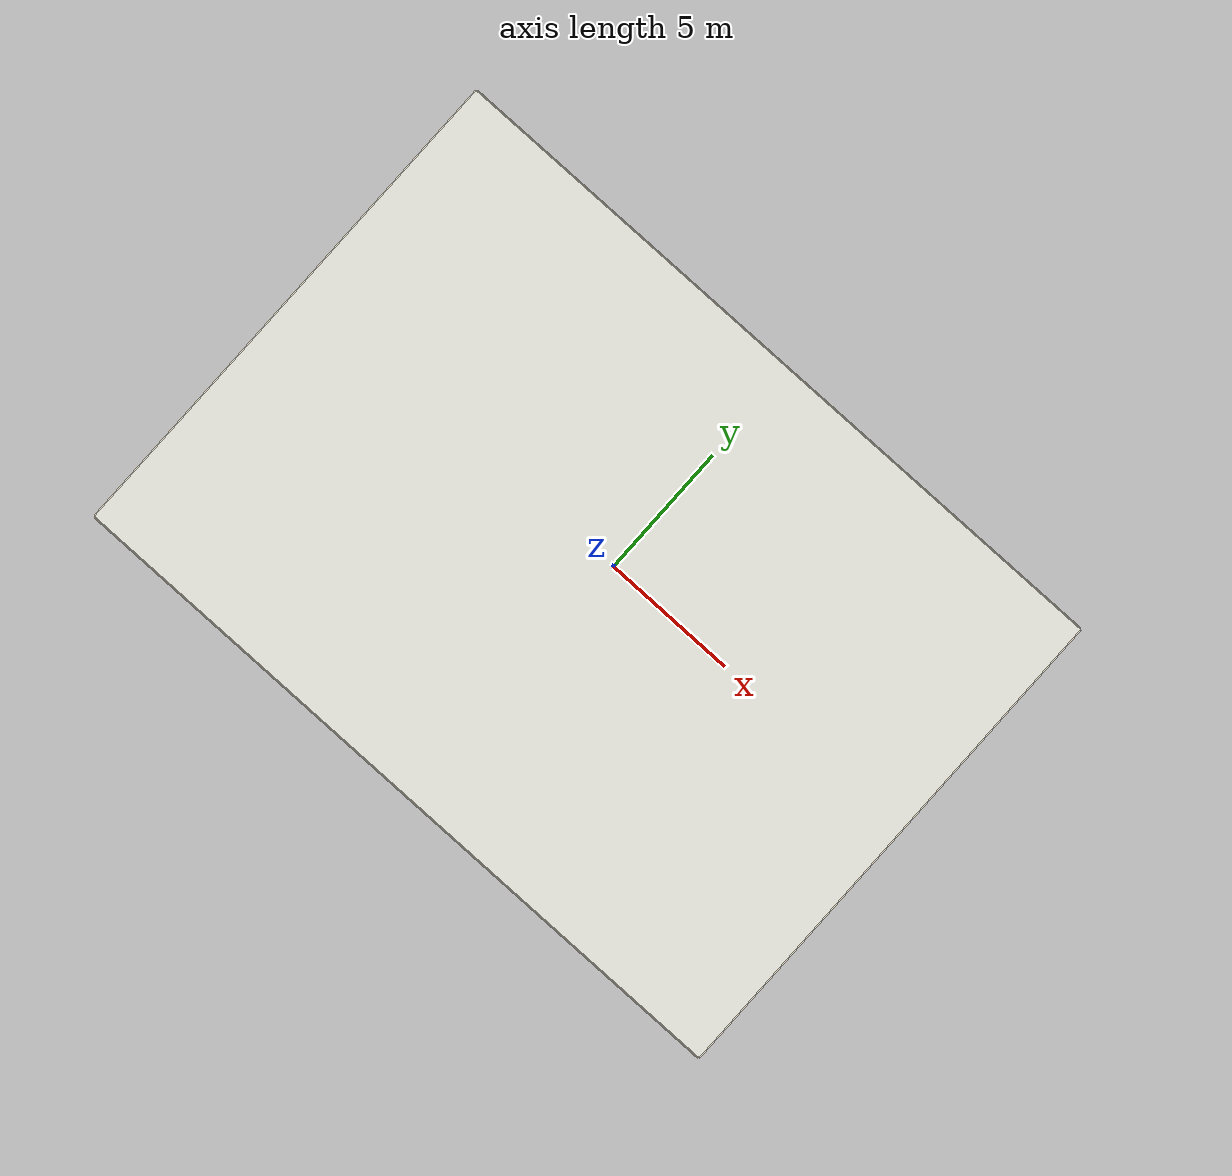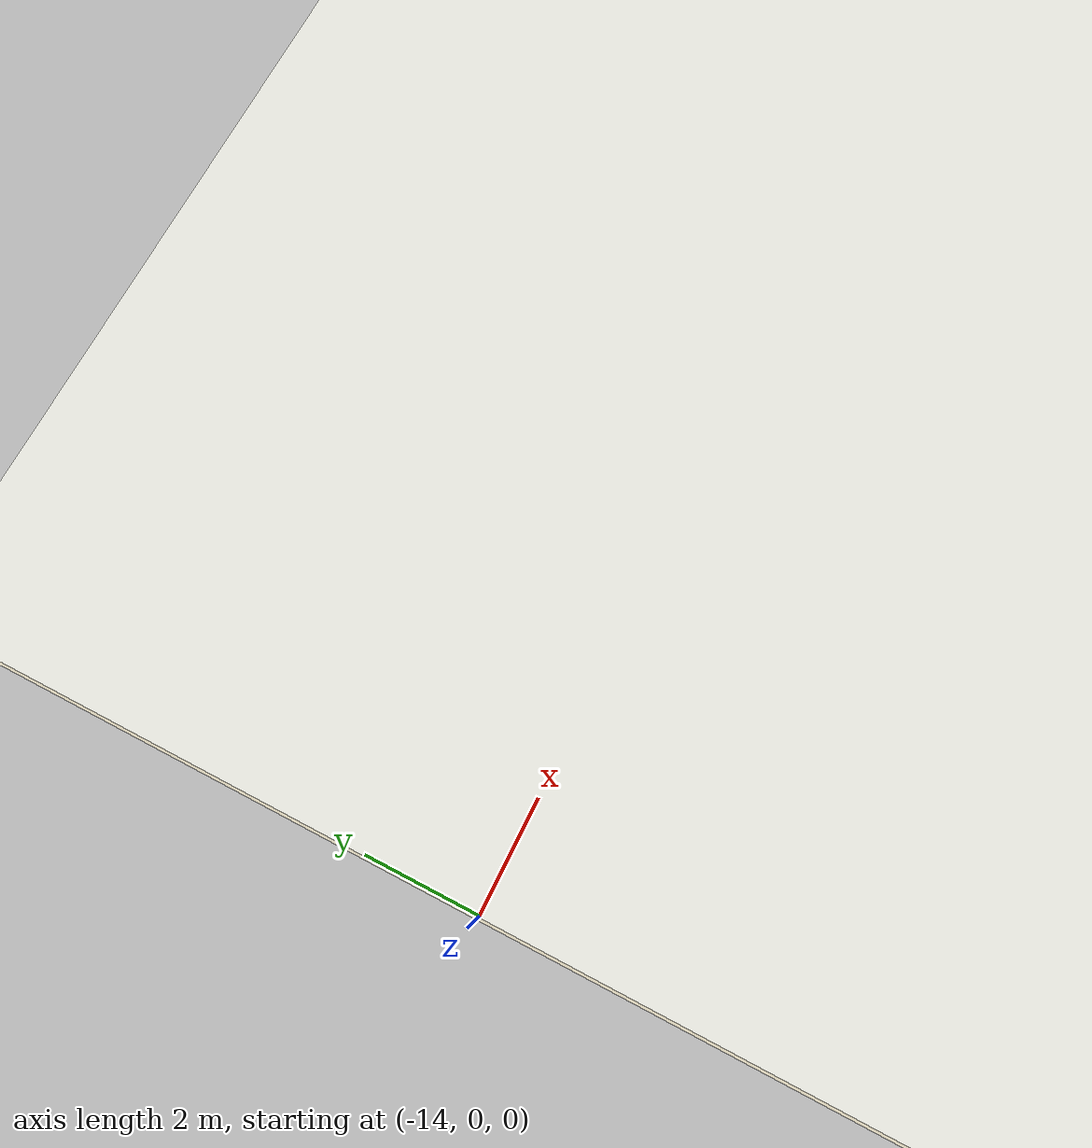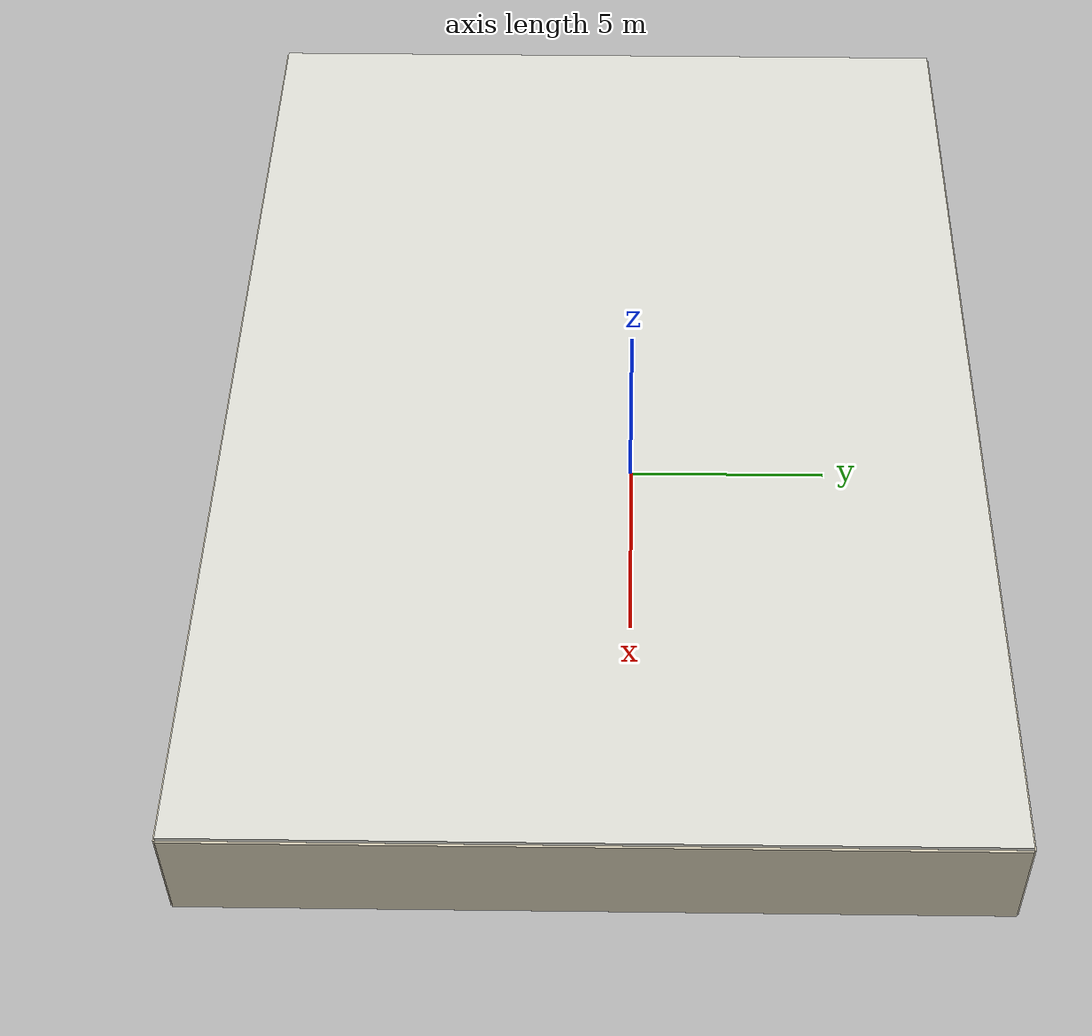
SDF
<?xml version="1.0" ?>
<sdf version='1.7'>
  <world name='default'>
    <plugin name='gazebo_ros_state' filename='libgazebo_ros_state.so'>
      <ros>
        <namespace>/</namespace>
      </ros>
      <update_rate>1000.0</update_rate>
    </plugin>

    <light name='sun' type='directional'>
      <cast_shadows>1</cast_shadows>
      <pose>0 0 10 0 -0 0</pose>
      <diffuse>0.15 0.15 0.14 1</diffuse>
      <specular>0.2 0.2 0.2 1</specular>
      <attenuation>
        <range>1000</range>
        <constant>0.9</constant>
        <linear>0.01</linear>
        <quadratic>0.001</quadratic>
      </attenuation>
      <direction>0.05 0.02 -1.0</direction>
      <spot>
        <inner_angle>0</inner_angle>
        <outer_angle>0</outer_angle>
        <falloff>0</falloff>
      </spot>
    </light>
    <model name='ground_plane'>
      <static>1</static>
      <link name='link'>
        <collision name='collision'>
          <geometry>
            <plane>
              <normal>0 0 1</normal>
              <size>100 100</size>
            </plane>
          </geometry>
          <surface>
            <friction>
              <ode>
                <mu>100</mu>
                <mu2>50</mu2>
              </ode>
              <torsional>
                <ode/>
              </torsional>
            </friction>
            <contact>
              <ode/>
            </contact>
            <bounce/>
          </surface>
          <max_contacts>10</max_contacts>
        </collision>
        <self_collide>0</self_collide>
        <enable_wind>0</enable_wind>
        <kinematic>0</kinematic>
      </link>
    </model>
    <gravity>0 0 -9.8</gravity>
    <magnetic_field>6e-06 2.3e-05 -4.2e-05</magnetic_field>
    <atmosphere type='adiabatic'/>
    <physics type='ode'>
      <max_step_size>0.001</max_step_size>
      <real_time_factor>1</real_time_factor>
      <real_time_update_rate>1000</real_time_update_rate>
    </physics>
    <scene>
      <ambient>0.69 0.69 0.67 1</ambient>
      <background>0.80 0.77 0.68 1</background>
      <shadows>1</shadows>
    </scene>
    <audio>
      <device>default</device>
    </audio>
    <wind/>
    <spherical_coordinates>
      <surface_model>EARTH_WGS84</surface_model>
      <latitude_deg>0</latitude_deg>
      <longitude_deg>0</longitude_deg>
      <elevation>0</elevation>
      <heading_deg>0</heading_deg>
    </spherical_coordinates>
    <model name='lab_09'>
    <static>1</static>
    <pose>0 0 0.001 0 0 0</pose>
    <link name='floor'>
      <visual name='floor_visual'>
        <cast_shadows>0</cast_shadows>
        <geometry><mesh><uri>model://lab_09/meshes/floor.obj</uri></mesh></geometry>
      </visual>
    </link>
    <link name='ducts'>
      <visual name='ducts_visual'>
        <geometry><mesh><uri>model://lab_09/meshes/ducts.obj</uri></mesh></geometry>
      </visual>
      <collision name='ducts_collision'>
        <geometry><mesh><uri>model://lab_09/meshes/ducts.obj</uri></mesh></geometry>
      </collision>
    </link>
    <link name='wall_0'>
      <pose>-0.490 8.585 1.350 0 0 0.000</pose>
      <visual name='wall_0_visual'>
        <cast_shadows>0</cast_shadows>
        <geometry><box><size>26.477 0.100 2.700</size></box></geometry>
        <material><ambient>0.80 0.77 0.68 1</ambient><diffuse>0.80 0.77 0.68 1</diffuse></material>
      </visual>
    </link>
    <link name='wall_1'>
      <pose>-0.490 -10.129 1.350 0 0 0.000</pose>
      <visual name='wall_1_visual'>
        <cast_shadows>0</cast_shadows>
        <geometry><box><size>26.477 0.100 2.700</size></box></geometry>
        <material><ambient>0.80 0.77 0.68 1</ambient><diffuse>0.80 0.77 0.68 1</diffuse></material>
      </visual>
    </link>
    <link name='wall_2'>
      <pose>-13.728 -0.772 1.350 0 0 0.000</pose>
      <visual name='wall_2_visual'>
        <cast_shadows>0</cast_shadows>
        <geometry><box><size>0.100 18.715 2.700</size></box></geometry>
        <material><ambient>0.80 0.77 0.68 1</ambient><diffuse>0.80 0.77 0.68 1</diffuse></material>
      </visual>
    </link>
    <link name='wall_3'>
      <pose>12.749 -0.772 1.350 0 0 0.000</pose>
      <visual name='wall_3_visual'>
        <cast_shadows>0</cast_shadows>
        <geometry><box><size>0.100 18.715 2.700</size></box></geometry>
        <material><ambient>0.80 0.77 0.68 1</ambient><diffuse>0.80 0.77 0.68 1</diffuse></material>
      </visual>
    </link>
    <link name='ceiling'>
      <pose>-0.490 -0.772 2.750 0 0 0.000</pose>
      <visual name='ceiling_visual'>
        <cast_shadows>0</cast_shadows>
        <geometry><box><size>26.477 18.715 0.100</size></box></geometry>
        <material><ambient>0.85 0.85 0.82 1</ambient><diffuse>0.85 0.85 0.82 1</diffuse></material>
      </visual>
    </link>
    <link name='panel_0_0'>
      <pose>-12.228 -8.629 2.690 0 0 0.000</pose>
      <visual name='panel_0_0_visual'>
        <cast_shadows>0</cast_shadows>
        <geometry><box><size>1.200 0.600 0.020</size></box></geometry>
        <material><ambient>1.00 1.00 1.00 1</ambient><diffuse>1.00 1.00 1.00 1</diffuse><emissive>1.00 1.00 1.00 1</emissive></material>
      </visual>
    </link>
    <link name='panel_0_1'>
      <pose>-12.228 -6.229 2.690 0 0 0.000</pose>
      <visual name='panel_0_1_visual'>
        <cast_shadows>0</cast_shadows>
        <geometry><box><size>1.200 0.600 0.020</size></box></geometry>
        <material><ambient>1.00 1.00 1.00 1</ambient><diffuse>1.00 1.00 1.00 1</diffuse><emissive>1.00 1.00 1.00 1</emissive></material>
      </visual>
    </link>
    <link name='panel_0_2'>
      <pose>-12.228 -3.829 2.690 0 0 0.000</pose>
      <visual name='panel_0_2_visual'>
        <cast_shadows>0</cast_shadows>
        <geometry><box><size>1.200 0.600 0.020</size></box></geometry>
        <material><ambient>1.00 1.00 1.00 1</ambient><diffuse>1.00 1.00 1.00 1</diffuse><emissive>1.00 1.00 1.00 1</emissive></material>
      </visual>
    </link>
    <link name='panel_0_3'>
      <pose>-12.228 -1.429 2.690 0 0 0.000</pose>
      <visual name='panel_0_3_visual'>
        <cast_shadows>0</cast_shadows>
        <geometry><box><size>1.200 0.600 0.020</size></box></geometry>
        <material><ambient>1.00 1.00 1.00 1</ambient><diffuse>1.00 1.00 1.00 1</diffuse><emissive>1.00 1.00 1.00 1</emissive></material>
      </visual>
    </link>
    <link name='panel_0_4'>
      <pose>-12.228 0.971 2.690 0 0 0.000</pose>
      <visual name='panel_0_4_visual'>
        <cast_shadows>0</cast_shadows>
        <geometry><box><size>1.200 0.600 0.020</size></box></geometry>
        <material><ambient>1.00 1.00 1.00 1</ambient><diffuse>1.00 1.00 1.00 1</diffuse><emissive>1.00 1.00 1.00 1</emissive></material>
      </visual>
    </link>
    <link name='panel_0_5'>
      <pose>-12.228 3.371 2.690 0 0 0.000</pose>
      <visual name='panel_0_5_visual'>
        <cast_shadows>0</cast_shadows>
        <geometry><box><size>1.200 0.600 0.020</size></box></geometry>
        <material><ambient>1.00 1.00 1.00 1</ambient><diffuse>1.00 1.00 1.00 1</diffuse><emissive>1.00 1.00 1.00 1</emissive></material>
      </visual>
    </link>
    <link name='panel_0_6'>
      <pose>-12.228 5.771 2.690 0 0 0.000</pose>
      <visual name='panel_0_6_visual'>
        <cast_shadows>0</cast_shadows>
        <geometry><box><size>1.200 0.600 0.020</size></box></geometry>
        <material><ambient>1.00 1.00 1.00 1</ambient><diffuse>1.00 1.00 1.00 1</diffuse><emissive>1.00 1.00 1.00 1</emissive></material>
      </visual>
    </link>
    <link name='panel_1_0'>
      <pose>-9.828 -8.629 2.690 0 0 0.000</pose>
      <visual name='panel_1_0_visual'>
        <cast_shadows>0</cast_shadows>
        <geometry><box><size>1.200 0.600 0.020</size></box></geometry>
        <material><ambient>1.00 1.00 1.00 1</ambient><diffuse>1.00 1.00 1.00 1</diffuse><emissive>1.00 1.00 1.00 1</emissive></material>
      </visual>
    </link>
    <link name='panel_1_1'>
      <pose>-9.828 -6.229 2.690 0 0 0.000</pose>
      <visual name='panel_1_1_visual'>
        <cast_shadows>0</cast_shadows>
        <geometry><box><size>1.200 0.600 0.020</size></box></geometry>
        <material><ambient>1.00 1.00 1.00 1</ambient><diffuse>1.00 1.00 1.00 1</diffuse><emissive>1.00 1.00 1.00 1</emissive></material>
      </visual>
    </link>
    <link name='panel_1_2'>
      <pose>-9.828 -3.829 2.690 0 0 0.000</pose>
      <visual name='panel_1_2_visual'>
        <cast_shadows>0</cast_shadows>
        <geometry><box><size>1.200 0.600 0.020</size></box></geometry>
        <material><ambient>1.00 1.00 1.00 1</ambient><diffuse>1.00 1.00 1.00 1</diffuse><emissive>1.00 1.00 1.00 1</emissive></material>
      </visual>
    </link>
    <link name='panel_1_3'>
      <pose>-9.828 -1.429 2.690 0 0 0.000</pose>
      <visual name='panel_1_3_visual'>
        <cast_shadows>0</cast_shadows>
        <geometry><box><size>1.200 0.600 0.020</size></box></geometry>
        <material><ambient>1.00 1.00 1.00 1</ambient><diffuse>1.00 1.00 1.00 1</diffuse><emissive>1.00 1.00 1.00 1</emissive></material>
      </visual>
    </link>
    <link name='panel_1_4'>
      <pose>-9.828 0.971 2.690 0 0 0.000</pose>
      <visual name='panel_1_4_visual'>
        <cast_shadows>0</cast_shadows>
        <geometry><box><size>1.200 0.600 0.020</size></box></geometry>
        <material><ambient>1.00 1.00 1.00 1</ambient><diffuse>1.00 1.00 1.00 1</diffuse><emissive>1.00 1.00 1.00 1</emissive></material>
      </visual>
    </link>
    <link name='panel_1_5'>
      <pose>-9.828 3.371 2.690 0 0 0.000</pose>
      <visual name='panel_1_5_visual'>
        <cast_shadows>0</cast_shadows>
        <geometry><box><size>1.200 0.600 0.020</size></box></geometry>
        <material><ambient>1.00 1.00 1.00 1</ambient><diffuse>1.00 1.00 1.00 1</diffuse><emissive>1.00 1.00 1.00 1</emissive></material>
      </visual>
    </link>
    <link name='panel_1_6'>
      <pose>-9.828 5.771 2.690 0 0 0.000</pose>
      <visual name='panel_1_6_visual'>
        <cast_shadows>0</cast_shadows>
        <geometry><box><size>1.200 0.600 0.020</size></box></geometry>
        <material><ambient>1.00 1.00 1.00 1</ambient><diffuse>1.00 1.00 1.00 1</diffuse><emissive>1.00 1.00 1.00 1</emissive></material>
      </visual>
    </link>
    <link name='panel_2_0'>
      <pose>-7.428 -8.629 2.690 0 0 0.000</pose>
      <visual name='panel_2_0_visual'>
        <cast_shadows>0</cast_shadows>
        <geometry><box><size>1.200 0.600 0.020</size></box></geometry>
        <material><ambient>1.00 1.00 1.00 1</ambient><diffuse>1.00 1.00 1.00 1</diffuse><emissive>1.00 1.00 1.00 1</emissive></material>
      </visual>
    </link>
    <link name='panel_2_1'>
      <pose>-7.428 -6.229 2.690 0 0 0.000</pose>
      <visual name='panel_2_1_visual'>
        <cast_shadows>0</cast_shadows>
        <geometry><box><size>1.200 0.600 0.020</size></box></geometry>
        <material><ambient>1.00 1.00 1.00 1</ambient><diffuse>1.00 1.00 1.00 1</diffuse><emissive>1.00 1.00 1.00 1</emissive></material>
      </visual>
    </link>
    <link name='panel_2_2'>
      <pose>-7.428 -3.829 2.690 0 0 0.000</pose>
      <visual name='panel_2_2_visual'>
        <cast_shadows>0</cast_shadows>
        <geometry><box><size>1.200 0.600 0.020</size></box></geometry>
        <material><ambient>1.00 1.00 1.00 1</ambient><diffuse>1.00 1.00 1.00 1</diffuse><emissive>1.00 1.00 1.00 1</emissive></material>
      </visual>
    </link>
    <link name='panel_2_3'>
      <pose>-7.428 -1.429 2.690 0 0 0.000</pose>
      <visual name='panel_2_3_visual'>
        <cast_shadows>0</cast_shadows>
        <geometry><box><size>1.200 0.600 0.020</size></box></geometry>
        <material><ambient>1.00 1.00 1.00 1</ambient><diffuse>1.00 1.00 1.00 1</diffuse><emissive>1.00 1.00 1.00 1</emissive></material>
      </visual>
    </link>
    <link name='panel_2_4'>
      <pose>-7.428 0.971 2.690 0 0 0.000</pose>
      <visual name='panel_2_4_visual'>
        <cast_shadows>0</cast_shadows>
        <geometry><box><size>1.200 0.600 0.020</size></box></geometry>
        <material><ambient>1.00 1.00 1.00 1</ambient><diffuse>1.00 1.00 1.00 1</diffuse><emissive>1.00 1.00 1.00 1</emissive></material>
      </visual>
    </link>
    <link name='panel_2_5'>
      <pose>-7.428 3.371 2.690 0 0 0.000</pose>
      <visual name='panel_2_5_visual'>
        <cast_shadows>0</cast_shadows>
        <geometry><box><size>1.200 0.600 0.020</size></box></geometry>
        <material><ambient>1.00 1.00 1.00 1</ambient><diffuse>1.00 1.00 1.00 1</diffuse><emissive>1.00 1.00 1.00 1</emissive></material>
      </visual>
    </link>
    <link name='panel_2_6'>
      <pose>-7.428 5.771 2.690 0 0 0.000</pose>
      <visual name='panel_2_6_visual'>
        <cast_shadows>0</cast_shadows>
        <geometry><box><size>1.200 0.600 0.020</size></box></geometry>
        <material><ambient>1.00 1.00 1.00 1</ambient><diffuse>1.00 1.00 1.00 1</diffuse><emissive>1.00 1.00 1.00 1</emissive></material>
      </visual>
    </link>
    <link name='panel_3_0'>
      <pose>-5.028 -8.629 2.690 0 0 0.000</pose>
      <visual name='panel_3_0_visual'>
        <cast_shadows>0</cast_shadows>
        <geometry><box><size>1.200 0.600 0.020</size></box></geometry>
        <material><ambient>1.00 1.00 1.00 1</ambient><diffuse>1.00 1.00 1.00 1</diffuse><emissive>1.00 1.00 1.00 1</emissive></material>
      </visual>
    </link>
    <link name='panel_3_1'>
      <pose>-5.028 -6.229 2.690 0 0 0.000</pose>
      <visual name='panel_3_1_visual'>
        <cast_shadows>0</cast_shadows>
        <geometry><box><size>1.200 0.600 0.020</size></box></geometry>
        <material><ambient>1.00 1.00 1.00 1</ambient><diffuse>1.00 1.00 1.00 1</diffuse><emissive>1.00 1.00 1.00 1</emissive></material>
      </visual>
    </link>
    <link name='panel_3_2'>
      <pose>-5.028 -3.829 2.690 0 0 0.000</pose>
      <visual name='panel_3_2_visual'>
        <cast_shadows>0</cast_shadows>
        <geometry><box><size>1.200 0.600 0.020</size></box></geometry>
        <material><ambient>1.00 1.00 1.00 1</ambient><diffuse>1.00 1.00 1.00 1</diffuse><emissive>1.00 1.00 1.00 1</emissive></material>
      </visual>
    </link>
    <link name='panel_3_3'>
      <pose>-5.028 -1.429 2.690 0 0 0.000</pose>
      <visual name='panel_3_3_visual'>
        <cast_shadows>0</cast_shadows>
        <geometry><box><size>1.200 0.600 0.020</size></box></geometry>
        <material><ambient>1.00 1.00 1.00 1</ambient><diffuse>1.00 1.00 1.00 1</diffuse><emissive>1.00 1.00 1.00 1</emissive></material>
      </visual>
    </link>
    <link name='panel_3_4'>
      <pose>-5.028 0.971 2.690 0 0 0.000</pose>
      <visual name='panel_3_4_visual'>
        <cast_shadows>0</cast_shadows>
        <geometry><box><size>1.200 0.600 0.020</size></box></geometry>
        <material><ambient>1.00 1.00 1.00 1</ambient><diffuse>1.00 1.00 1.00 1</diffuse><emissive>1.00 1.00 1.00 1</emissive></material>
      </visual>
    </link>
    <link name='panel_3_5'>
      <pose>-5.028 3.371 2.690 0 0 0.000</pose>
      <visual name='panel_3_5_visual'>
        <cast_shadows>0</cast_shadows>
        <geometry><box><size>1.200 0.600 0.020</size></box></geometry>
        <material><ambient>1.00 1.00 1.00 1</ambient><diffuse>1.00 1.00 1.00 1</diffuse><emissive>1.00 1.00 1.00 1</emissive></material>
      </visual>
    </link>
    <link name='panel_3_6'>
      <pose>-5.028 5.771 2.690 0 0 0.000</pose>
      <visual name='panel_3_6_visual'>
        <cast_shadows>0</cast_shadows>
        <geometry><box><size>1.200 0.600 0.020</size></box></geometry>
        <material><ambient>1.00 1.00 1.00 1</ambient><diffuse>1.00 1.00 1.00 1</diffuse><emissive>1.00 1.00 1.00 1</emissive></material>
      </visual>
    </link>
    <link name='panel_4_0'>
      <pose>-2.628 -8.629 2.690 0 0 0.000</pose>
      <visual name='panel_4_0_visual'>
        <cast_shadows>0</cast_shadows>
        <geometry><box><size>1.200 0.600 0.020</size></box></geometry>
        <material><ambient>1.00 1.00 1.00 1</ambient><diffuse>1.00 1.00 1.00 1</diffuse><emissive>1.00 1.00 1.00 1</emissive></material>
      </visual>
    </link>
    <link name='panel_4_1'>
      <pose>-2.628 -6.229 2.690 0 0 0.000</pose>
      <visual name='panel_4_1_visual'>
        <cast_shadows>0</cast_shadows>
        <geometry><box><size>1.200 0.600 0.020</size></box></geometry>
        <material><ambient>1.00 1.00 1.00 1</ambient><diffuse>1.00 1.00 1.00 1</diffuse><emissive>1.00 1.00 1.00 1</emissive></material>
      </visual>
    </link>
    <link name='panel_4_2'>
      <pose>-2.628 -3.829 2.690 0 0 0.000</pose>
      <visual name='panel_4_2_visual'>
        <cast_shadows>0</cast_shadows>
        <geometry><box><size>1.200 0.600 0.020</size></box></geometry>
        <material><ambient>1.00 1.00 1.00 1</ambient><diffuse>1.00 1.00 1.00 1</diffuse><emissive>1.00 1.00 1.00 1</emissive></material>
      </visual>
    </link>
    <link name='panel_4_3'>
      <pose>-2.628 -1.429 2.690 0 0 0.000</pose>
      <visual name='panel_4_3_visual'>
        <cast_shadows>0</cast_shadows>
        <geometry><box><size>1.200 0.600 0.020</size></box></geometry>
        <material><ambient>1.00 1.00 1.00 1</ambient><diffuse>1.00 1.00 1.00 1</diffuse><emissive>1.00 1.00 1.00 1</emissive></material>
      </visual>
    </link>
    <link name='panel_4_4'>
      <pose>-2.628 0.971 2.690 0 0 0.000</pose>
      <visual name='panel_4_4_visual'>
        <cast_shadows>0</cast_shadows>
        <geometry><box><size>1.200 0.600 0.020</size></box></geometry>
        <material><ambient>1.00 1.00 1.00 1</ambient><diffuse>1.00 1.00 1.00 1</diffuse><emissive>1.00 1.00 1.00 1</emissive></material>
      </visual>
    </link>
    <link name='panel_4_5'>
      <pose>-2.628 3.371 2.690 0 0 0.000</pose>
      <visual name='panel_4_5_visual'>
        <cast_shadows>0</cast_shadows>
        <geometry><box><size>1.200 0.600 0.020</size></box></geometry>
        <material><ambient>1.00 1.00 1.00 1</ambient><diffuse>1.00 1.00 1.00 1</diffuse><emissive>1.00 1.00 1.00 1</emissive></material>
      </visual>
    </link>
    <link name='panel_4_6'>
      <pose>-2.628 5.771 2.690 0 0 0.000</pose>
      <visual name='panel_4_6_visual'>
        <cast_shadows>0</cast_shadows>
        <geometry><box><size>1.200 0.600 0.020</size></box></geometry>
        <material><ambient>1.00 1.00 1.00 1</ambient><diffuse>1.00 1.00 1.00 1</diffuse><emissive>1.00 1.00 1.00 1</emissive></material>
      </visual>
    </link>
    <link name='panel_5_0'>
      <pose>-0.228 -8.629 2.690 0 0 0.000</pose>
      <visual name='panel_5_0_visual'>
        <cast_shadows>0</cast_shadows>
        <geometry><box><size>1.200 0.600 0.020</size></box></geometry>
        <material><ambient>1.00 1.00 1.00 1</ambient><diffuse>1.00 1.00 1.00 1</diffuse><emissive>1.00 1.00 1.00 1</emissive></material>
      </visual>
    </link>
    <link name='panel_5_1'>
      <pose>-0.228 -6.229 2.690 0 0 0.000</pose>
      <visual name='panel_5_1_visual'>
        <cast_shadows>0</cast_shadows>
        <geometry><box><size>1.200 0.600 0.020</size></box></geometry>
        <material><ambient>1.00 1.00 1.00 1</ambient><diffuse>1.00 1.00 1.00 1</diffuse><emissive>1.00 1.00 1.00 1</emissive></material>
      </visual>
    </link>
    <link name='panel_5_2'>
      <pose>-0.228 -3.829 2.690 0 0 0.000</pose>
      <visual name='panel_5_2_visual'>
        <cast_shadows>0</cast_shadows>
        <geometry><box><size>1.200 0.600 0.020</size></box></geometry>
        <material><ambient>1.00 1.00 1.00 1</ambient><diffuse>1.00 1.00 1.00 1</diffuse><emissive>1.00 1.00 1.00 1</emissive></material>
      </visual>
    </link>
    <link name='panel_5_3'>
      <pose>-0.228 -1.429 2.690 0 0 0.000</pose>
      <visual name='panel_5_3_visual'>
        <cast_shadows>0</cast_shadows>
        <geometry><box><size>1.200 0.600 0.020</size></box></geometry>
        <material><ambient>1.00 1.00 1.00 1</ambient><diffuse>1.00 1.00 1.00 1</diffuse><emissive>1.00 1.00 1.00 1</emissive></material>
      </visual>
    </link>
    <link name='panel_5_4'>
      <pose>-0.228 0.971 2.690 0 0 0.000</pose>
      <visual name='panel_5_4_visual'>
        <cast_shadows>0</cast_shadows>
        <geometry><box><size>1.200 0.600 0.020</size></box></geometry>
        <material><ambient>1.00 1.00 1.00 1</ambient><diffuse>1.00 1.00 1.00 1</diffuse><emissive>1.00 1.00 1.00 1</emissive></material>
      </visual>
    </link>
    <link name='panel_5_5'>
      <pose>-0.228 3.371 2.690 0 0 0.000</pose>
      <visual name='panel_5_5_visual'>
        <cast_shadows>0</cast_shadows>
        <geometry><box><size>1.200 0.600 0.020</size></box></geometry>
        <material><ambient>1.00 1.00 1.00 1</ambient><diffuse>1.00 1.00 1.00 1</diffuse><emissive>1.00 1.00 1.00 1</emissive></material>
      </visual>
    </link>
    <link name='panel_5_6'>
      <pose>-0.228 5.771 2.690 0 0 0.000</pose>
      <visual name='panel_5_6_visual'>
        <cast_shadows>0</cast_shadows>
        <geometry><box><size>1.200 0.600 0.020</size></box></geometry>
        <material><ambient>1.00 1.00 1.00 1</ambient><diffuse>1.00 1.00 1.00 1</diffuse><emissive>1.00 1.00 1.00 1</emissive></material>
      </visual>
    </link>
    <link name='panel_6_0'>
      <pose>2.172 -8.629 2.690 0 0 0.000</pose>
      <visual name='panel_6_0_visual'>
        <cast_shadows>0</cast_shadows>
        <geometry><box><size>1.200 0.600 0.020</size></box></geometry>
        <material><ambient>1.00 1.00 1.00 1</ambient><diffuse>1.00 1.00 1.00 1</diffuse><emissive>1.00 1.00 1.00 1</emissive></material>
      </visual>
    </link>
    <link name='panel_6_1'>
      <pose>2.172 -6.229 2.690 0 0 0.000</pose>
      <visual name='panel_6_1_visual'>
        <cast_shadows>0</cast_shadows>
        <geometry><box><size>1.200 0.600 0.020</size></box></geometry>
        <material><ambient>1.00 1.00 1.00 1</ambient><diffuse>1.00 1.00 1.00 1</diffuse><emissive>1.00 1.00 1.00 1</emissive></material>
      </visual>
    </link>
    <link name='panel_6_2'>
      <pose>2.172 -3.829 2.690 0 0 0.000</pose>
      <visual name='panel_6_2_visual'>
        <cast_shadows>0</cast_shadows>
        <geometry><box><size>1.200 0.600 0.020</size></box></geometry>
        <material><ambient>1.00 1.00 1.00 1</ambient><diffuse>1.00 1.00 1.00 1</diffuse><emissive>1.00 1.00 1.00 1</emissive></material>
      </visual>
    </link>
    <link name='panel_6_3'>
      <pose>2.172 -1.429 2.690 0 0 0.000</pose>
      <visual name='panel_6_3_visual'>
        <cast_shadows>0</cast_shadows>
        <geometry><box><size>1.200 0.600 0.020</size></box></geometry>
        <material><ambient>1.00 1.00 1.00 1</ambient><diffuse>1.00 1.00 1.00 1</diffuse><emissive>1.00 1.00 1.00 1</emissive></material>
      </visual>
    </link>
    <link name='panel_6_4'>
      <pose>2.172 0.971 2.690 0 0 0.000</pose>
      <visual name='panel_6_4_visual'>
        <cast_shadows>0</cast_shadows>
        <geometry><box><size>1.200 0.600 0.020</size></box></geometry>
        <material><ambient>1.00 1.00 1.00 1</ambient><diffuse>1.00 1.00 1.00 1</diffuse><emissive>1.00 1.00 1.00 1</emissive></material>
      </visual>
    </link>
    <link name='panel_6_5'>
      <pose>2.172 3.371 2.690 0 0 0.000</pose>
      <visual name='panel_6_5_visual'>
        <cast_shadows>0</cast_shadows>
        <geometry><box><size>1.200 0.600 0.020</size></box></geometry>
        <material><ambient>1.00 1.00 1.00 1</ambient><diffuse>1.00 1.00 1.00 1</diffuse><emissive>1.00 1.00 1.00 1</emissive></material>
      </visual>
    </link>
    <link name='panel_6_6'>
      <pose>2.172 5.771 2.690 0 0 0.000</pose>
      <visual name='panel_6_6_visual'>
        <cast_shadows>0</cast_shadows>
        <geometry><box><size>1.200 0.600 0.020</size></box></geometry>
        <material><ambient>1.00 1.00 1.00 1</ambient><diffuse>1.00 1.00 1.00 1</diffuse><emissive>1.00 1.00 1.00 1</emissive></material>
      </visual>
    </link>
    <link name='panel_7_0'>
      <pose>4.572 -8.629 2.690 0 0 0.000</pose>
      <visual name='panel_7_0_visual'>
        <cast_shadows>0</cast_shadows>
        <geometry><box><size>1.200 0.600 0.020</size></box></geometry>
        <material><ambient>1.00 1.00 1.00 1</ambient><diffuse>1.00 1.00 1.00 1</diffuse><emissive>1.00 1.00 1.00 1</emissive></material>
      </visual>
    </link>
    <link name='panel_7_1'>
      <pose>4.572 -6.229 2.690 0 0 0.000</pose>
      <visual name='panel_7_1_visual'>
        <cast_shadows>0</cast_shadows>
        <geometry><box><size>1.200 0.600 0.020</size></box></geometry>
        <material><ambient>1.00 1.00 1.00 1</ambient><diffuse>1.00 1.00 1.00 1</diffuse><emissive>1.00 1.00 1.00 1</emissive></material>
      </visual>
    </link>
    <link name='panel_7_2'>
      <pose>4.572 -3.829 2.690 0 0 0.000</pose>
      <visual name='panel_7_2_visual'>
        <cast_shadows>0</cast_shadows>
        <geometry><box><size>1.200 0.600 0.020</size></box></geometry>
        <material><ambient>1.00 1.00 1.00 1</ambient><diffuse>1.00 1.00 1.00 1</diffuse><emissive>1.00 1.00 1.00 1</emissive></material>
      </visual>
    </link>
    <link name='panel_7_3'>
      <pose>4.572 -1.429 2.690 0 0 0.000</pose>
      <visual name='panel_7_3_visual'>
        <cast_shadows>0</cast_shadows>
        <geometry><box><size>1.200 0.600 0.020</size></box></geometry>
        <material><ambient>1.00 1.00 1.00 1</ambient><diffuse>1.00 1.00 1.00 1</diffuse><emissive>1.00 1.00 1.00 1</emissive></material>
      </visual>
    </link>
    <link name='panel_7_4'>
      <pose>4.572 0.971 2.690 0 0 0.000</pose>
      <visual name='panel_7_4_visual'>
        <cast_shadows>0</cast_shadows>
        <geometry><box><size>1.200 0.600 0.020</size></box></geometry>
        <material><ambient>1.00 1.00 1.00 1</ambient><diffuse>1.00 1.00 1.00 1</diffuse><emissive>1.00 1.00 1.00 1</emissive></material>
      </visual>
    </link>
    <link name='panel_7_5'>
      <pose>4.572 3.371 2.690 0 0 0.000</pose>
      <visual name='panel_7_5_visual'>
        <cast_shadows>0</cast_shadows>
        <geometry><box><size>1.200 0.600 0.020</size></box></geometry>
        <material><ambient>1.00 1.00 1.00 1</ambient><diffuse>1.00 1.00 1.00 1</diffuse><emissive>1.00 1.00 1.00 1</emissive></material>
      </visual>
    </link>
    <link name='panel_7_6'>
      <pose>4.572 5.771 2.690 0 0 0.000</pose>
      <visual name='panel_7_6_visual'>
        <cast_shadows>0</cast_shadows>
        <geometry><box><size>1.200 0.600 0.020</size></box></geometry>
        <material><ambient>1.00 1.00 1.00 1</ambient><diffuse>1.00 1.00 1.00 1</diffuse><emissive>1.00 1.00 1.00 1</emissive></material>
      </visual>
    </link>
    <link name='panel_8_0'>
      <pose>6.972 -8.629 2.690 0 0 0.000</pose>
      <visual name='panel_8_0_visual'>
        <cast_shadows>0</cast_shadows>
        <geometry><box><size>1.200 0.600 0.020</size></box></geometry>
        <material><ambient>1.00 1.00 1.00 1</ambient><diffuse>1.00 1.00 1.00 1</diffuse><emissive>1.00 1.00 1.00 1</emissive></material>
      </visual>
    </link>
    <link name='panel_8_1'>
      <pose>6.972 -6.229 2.690 0 0 0.000</pose>
      <visual name='panel_8_1_visual'>
        <cast_shadows>0</cast_shadows>
        <geometry><box><size>1.200 0.600 0.020</size></box></geometry>
        <material><ambient>1.00 1.00 1.00 1</ambient><diffuse>1.00 1.00 1.00 1</diffuse><emissive>1.00 1.00 1.00 1</emissive></material>
      </visual>
    </link>
    <link name='panel_8_2'>
      <pose>6.972 -3.829 2.690 0 0 0.000</pose>
      <visual name='panel_8_2_visual'>
        <cast_shadows>0</cast_shadows>
        <geometry><box><size>1.200 0.600 0.020</size></box></geometry>
        <material><ambient>1.00 1.00 1.00 1</ambient><diffuse>1.00 1.00 1.00 1</diffuse><emissive>1.00 1.00 1.00 1</emissive></material>
      </visual>
    </link>
    <link name='panel_8_3'>
      <pose>6.972 -1.429 2.690 0 0 0.000</pose>
      <visual name='panel_8_3_visual'>
        <cast_shadows>0</cast_shadows>
        <geometry><box><size>1.200 0.600 0.020</size></box></geometry>
        <material><ambient>1.00 1.00 1.00 1</ambient><diffuse>1.00 1.00 1.00 1</diffuse><emissive>1.00 1.00 1.00 1</emissive></material>
      </visual>
    </link>
    <link name='panel_8_4'>
      <pose>6.972 0.971 2.690 0 0 0.000</pose>
      <visual name='panel_8_4_visual'>
        <cast_shadows>0</cast_shadows>
        <geometry><box><size>1.200 0.600 0.020</size></box></geometry>
        <material><ambient>1.00 1.00 1.00 1</ambient><diffuse>1.00 1.00 1.00 1</diffuse><emissive>1.00 1.00 1.00 1</emissive></material>
      </visual>
    </link>
    <link name='panel_8_5'>
      <pose>6.972 3.371 2.690 0 0 0.000</pose>
      <visual name='panel_8_5_visual'>
        <cast_shadows>0</cast_shadows>
        <geometry><box><size>1.200 0.600 0.020</size></box></geometry>
        <material><ambient>1.00 1.00 1.00 1</ambient><diffuse>1.00 1.00 1.00 1</diffuse><emissive>1.00 1.00 1.00 1</emissive></material>
      </visual>
    </link>
    <link name='panel_8_6'>
      <pose>6.972 5.771 2.690 0 0 0.000</pose>
      <visual name='panel_8_6_visual'>
        <cast_shadows>0</cast_shadows>
        <geometry><box><size>1.200 0.600 0.020</size></box></geometry>
        <material><ambient>1.00 1.00 1.00 1</ambient><diffuse>1.00 1.00 1.00 1</diffuse><emissive>1.00 1.00 1.00 1</emissive></material>
      </visual>
    </link>
    <link name='panel_9_0'>
      <pose>9.372 -8.629 2.690 0 0 0.000</pose>
      <visual name='panel_9_0_visual'>
        <cast_shadows>0</cast_shadows>
        <geometry><box><size>1.200 0.600 0.020</size></box></geometry>
        <material><ambient>1.00 1.00 1.00 1</ambient><diffuse>1.00 1.00 1.00 1</diffuse><emissive>1.00 1.00 1.00 1</emissive></material>
      </visual>
    </link>
    <link name='panel_9_1'>
      <pose>9.372 -6.229 2.690 0 0 0.000</pose>
      <visual name='panel_9_1_visual'>
        <cast_shadows>0</cast_shadows>
        <geometry><box><size>1.200 0.600 0.020</size></box></geometry>
        <material><ambient>1.00 1.00 1.00 1</ambient><diffuse>1.00 1.00 1.00 1</diffuse><emissive>1.00 1.00 1.00 1</emissive></material>
      </visual>
    </link>
    <link name='panel_9_2'>
      <pose>9.372 -3.829 2.690 0 0 0.000</pose>
      <visual name='panel_9_2_visual'>
        <cast_shadows>0</cast_shadows>
        <geometry><box><size>1.200 0.600 0.020</size></box></geometry>
        <material><ambient>1.00 1.00 1.00 1</ambient><diffuse>1.00 1.00 1.00 1</diffuse><emissive>1.00 1.00 1.00 1</emissive></material>
      </visual>
    </link>
    <link name='panel_9_3'>
      <pose>9.372 -1.429 2.690 0 0 0.000</pose>
      <visual name='panel_9_3_visual'>
        <cast_shadows>0</cast_shadows>
        <geometry><box><size>1.200 0.600 0.020</size></box></geometry>
        <material><ambient>1.00 1.00 1.00 1</ambient><diffuse>1.00 1.00 1.00 1</diffuse><emissive>1.00 1.00 1.00 1</emissive></material>
      </visual>
    </link>
    <link name='panel_9_4'>
      <pose>9.372 0.971 2.690 0 0 0.000</pose>
      <visual name='panel_9_4_visual'>
        <cast_shadows>0</cast_shadows>
        <geometry><box><size>1.200 0.600 0.020</size></box></geometry>
        <material><ambient>1.00 1.00 1.00 1</ambient><diffuse>1.00 1.00 1.00 1</diffuse><emissive>1.00 1.00 1.00 1</emissive></material>
      </visual>
    </link>
    <link name='panel_9_5'>
      <pose>9.372 3.371 2.690 0 0 0.000</pose>
      <visual name='panel_9_5_visual'>
        <cast_shadows>0</cast_shadows>
        <geometry><box><size>1.200 0.600 0.020</size></box></geometry>
        <material><ambient>1.00 1.00 1.00 1</ambient><diffuse>1.00 1.00 1.00 1</diffuse><emissive>1.00 1.00 1.00 1</emissive></material>
      </visual>
    </link>
    <link name='panel_9_6'>
      <pose>9.372 5.771 2.690 0 0 0.000</pose>
      <visual name='panel_9_6_visual'>
        <cast_shadows>0</cast_shadows>
        <geometry><box><size>1.200 0.600 0.020</size></box></geometry>
        <material><ambient>1.00 1.00 1.00 1</ambient><diffuse>1.00 1.00 1.00 1</diffuse><emissive>1.00 1.00 1.00 1</emissive></material>
      </visual>
    </link>
    <link name='p0'>
      <pose>-11.694 8.150 0.375 0 0 0.000</pose>
      <visual name='p0_visual'>
        <cast_shadows>0</cast_shadows>
        <geometry><box><size>1.500 0.750 0.750</size></box></geometry>
        <material><ambient>0.32 0.32 0.33 1</ambient><diffuse>0.32 0.32 0.33 1</diffuse></material>
      </visual>
    </link>
    <link name='p1'>
      <pose>-9.328 8.500 0.375 0 0 0.000</pose>
      <visual name='p1_visual'>
        <cast_shadows>0</cast_shadows>
        <geometry><box><size>1.800 0.050 0.750</size></box></geometry>
        <material><ambient>0.93 0.93 0.92 1</ambient><diffuse>0.93 0.93 0.92 1</diffuse></material>
      </visual>
    </link>
    <link name='p2'>
      <pose>-6.348 8.150 0.375 0 0 0.000</pose>
      <visual name='p2_visual'>
        <cast_shadows>0</cast_shadows>
        <geometry><box><size>1.500 0.750 0.750</size></box></geometry>
        <material><ambient>0.32 0.32 0.33 1</ambient><diffuse>0.32 0.32 0.33 1</diffuse></material>
      </visual>
    </link>
    <link name='p3'>
      <pose>-4.209 8.275 0.650 0 0 0.000</pose>
      <visual name='p3_visual'>
        <cast_shadows>0</cast_shadows>
        <geometry><box><size>0.900 0.500 1.300</size></box></geometry>
        <material><ambient>0.25 0.33 0.36 1</ambient><diffuse>0.25 0.33 0.36 1</diffuse></material>
      </visual>
    </link>
    <link name='p4'>
      <pose>-1.796 8.275 0.225 0 0 0.000</pose>
      <visual name='p4_visual'>
        <cast_shadows>0</cast_shadows>
        <geometry><box><size>0.600 0.500 0.450</size></box></geometry>
        <material><ambient>0.62 0.45 0.28 1</ambient><diffuse>0.62 0.45 0.28 1</diffuse></material>
      </visual>
    </link>
    <link name='p5'>
      <pose>-1.796 8.275 0.675 0 0 0.000</pose>
      <visual name='p5_visual'>
        <cast_shadows>0</cast_shadows>
        <geometry><box><size>0.600 0.500 0.450</size></box></geometry>
        <material><ambient>0.62 0.45 0.28 1</ambient><diffuse>0.62 0.45 0.28 1</diffuse></material>
      </visual>
    </link>
    <link name='p6'>
      <pose>-0.296 8.275 0.225 0 0 0.000</pose>
      <visual name='p6_visual'>
        <cast_shadows>0</cast_shadows>
        <geometry><box><size>0.600 0.500 0.450</size></box></geometry>
        <material><ambient>0.62 0.45 0.28 1</ambient><diffuse>0.62 0.45 0.28 1</diffuse></material>
      </visual>
    </link>
    <link name='p7'>
      <pose>1.097 8.275 0.650 0 0 0.000</pose>
      <visual name='p7_visual'>
        <cast_shadows>0</cast_shadows>
        <geometry><box><size>0.900 0.500 1.300</size></box></geometry>
        <material><ambient>0.25 0.33 0.36 1</ambient><diffuse>0.25 0.33 0.36 1</diffuse></material>
      </visual>
    </link>
    <link name='p8'>
      <pose>2.526 8.150 0.375 0 0 0.000</pose>
      <visual name='p8_visual'>
        <cast_shadows>0</cast_shadows>
        <geometry><box><size>1.500 0.750 0.750</size></box></geometry>
        <material><ambient>0.32 0.32 0.33 1</ambient><diffuse>0.32 0.32 0.33 1</diffuse></material>
      </visual>
    </link>
    <link name='p9'>
      <pose>5.995 8.150 0.375 0 0 0.000</pose>
      <visual name='p9_visual'>
        <cast_shadows>0</cast_shadows>
        <geometry><box><size>1.500 0.750 0.750</size></box></geometry>
        <material><ambient>0.32 0.32 0.33 1</ambient><diffuse>0.32 0.32 0.33 1</diffuse></material>
      </visual>
    </link>
    <link name='p10'>
      <pose>8.914 8.275 0.650 0 0 0.000</pose>
      <visual name='p10_visual'>
        <cast_shadows>0</cast_shadows>
        <geometry><box><size>0.900 0.500 1.300</size></box></geometry>
        <material><ambient>0.25 0.33 0.36 1</ambient><diffuse>0.25 0.33 0.36 1</diffuse></material>
      </visual>
    </link>
    <link name='p11'>
      <pose>12.464 -7.423 0.925 0 0 0.000</pose>
      <visual name='p11_visual'>
        <cast_shadows>0</cast_shadows>
        <geometry><box><size>0.450 0.300 1.850</size></box></geometry>
        <material><ambient>0.55 0.57 0.58 1</ambient><diffuse>0.55 0.57 0.58 1</diffuse></material>
      </visual>
    </link>
    <link name='p12'>
      <pose>12.464 -7.113 0.925 0 0 0.000</pose>
      <visual name='p12_visual'>
        <cast_shadows>0</cast_shadows>
        <geometry><box><size>0.450 0.300 1.850</size></box></geometry>
        <material><ambient>0.55 0.57 0.58 1</ambient><diffuse>0.55 0.57 0.58 1</diffuse></material>
      </visual>
    </link>
    <link name='p13'>
      <pose>12.464 -6.803 0.925 0 0 0.000</pose>
      <visual name='p13_visual'>
        <cast_shadows>0</cast_shadows>
        <geometry><box><size>0.450 0.300 1.850</size></box></geometry>
        <material><ambient>0.55 0.57 0.58 1</ambient><diffuse>0.55 0.57 0.58 1</diffuse></material>
      </visual>
    </link>
    <link name='p14'>
      <pose>12.464 -6.493 0.925 0 0 0.000</pose>
      <visual name='p14_visual'>
        <cast_shadows>0</cast_shadows>
        <geometry><box><size>0.450 0.300 1.850</size></box></geometry>
        <material><ambient>0.55 0.57 0.58 1</ambient><diffuse>0.55 0.57 0.58 1</diffuse></material>
      </visual>
    </link>
    <link name='p15'>
      <pose>12.464 -6.183 0.925 0 0 0.000</pose>
      <visual name='p15_visual'>
        <cast_shadows>0</cast_shadows>
        <geometry><box><size>0.450 0.300 1.850</size></box></geometry>
        <material><ambient>0.55 0.57 0.58 1</ambient><diffuse>0.55 0.57 0.58 1</diffuse></material>
      </visual>
    </link>
    <link name='p16'>
      <pose>12.464 -5.873 0.925 0 0 0.000</pose>
      <visual name='p16_visual'>
        <cast_shadows>0</cast_shadows>
        <geometry><box><size>0.450 0.300 1.850</size></box></geometry>
        <material><ambient>0.55 0.57 0.58 1</ambient><diffuse>0.55 0.57 0.58 1</diffuse></material>
      </visual>
    </link>
    <link name='p17'>
      <pose>12.464 -5.563 0.925 0 0 0.000</pose>
      <visual name='p17_visual'>
        <cast_shadows>0</cast_shadows>
        <geometry><box><size>0.450 0.300 1.850</size></box></geometry>
        <material><ambient>0.55 0.57 0.58 1</ambient><diffuse>0.55 0.57 0.58 1</diffuse></material>
      </visual>
    </link>
    <link name='p18'>
      <pose>12.464 -5.253 0.925 0 0 0.000</pose>
      <visual name='p18_visual'>
        <cast_shadows>0</cast_shadows>
        <geometry><box><size>0.450 0.300 1.850</size></box></geometry>
        <material><ambient>0.55 0.57 0.58 1</ambient><diffuse>0.55 0.57 0.58 1</diffuse></material>
      </visual>
    </link>
    <link name='p19'>
      <pose>12.439 -4.469 0.650 0 0 0.000</pose>
      <visual name='p19_visual'>
        <cast_shadows>0</cast_shadows>
        <geometry><box><size>0.500 0.900 1.300</size></box></geometry>
        <material><ambient>0.25 0.33 0.36 1</ambient><diffuse>0.25 0.33 0.36 1</diffuse></material>
      </visual>
    </link>
    <link name='p20'>
      <pose>12.464 -2.517 0.925 0 0 0.000</pose>
      <visual name='p20_visual'>
        <cast_shadows>0</cast_shadows>
        <geometry><box><size>0.450 0.300 1.850</size></box></geometry>
        <material><ambient>0.55 0.57 0.58 1</ambient><diffuse>0.55 0.57 0.58 1</diffuse></material>
      </visual>
    </link>
    <link name='p21'>
      <pose>12.464 -2.207 0.925 0 0 0.000</pose>
      <visual name='p21_visual'>
        <cast_shadows>0</cast_shadows>
        <geometry><box><size>0.450 0.300 1.850</size></box></geometry>
        <material><ambient>0.55 0.57 0.58 1</ambient><diffuse>0.55 0.57 0.58 1</diffuse></material>
      </visual>
    </link>
    <link name='p22'>
      <pose>12.464 -1.897 0.925 0 0 0.000</pose>
      <visual name='p22_visual'>
        <cast_shadows>0</cast_shadows>
        <geometry><box><size>0.450 0.300 1.850</size></box></geometry>
        <material><ambient>0.55 0.57 0.58 1</ambient><diffuse>0.55 0.57 0.58 1</diffuse></material>
      </visual>
    </link>
    <link name='p23'>
      <pose>12.464 -1.587 0.925 0 0 0.000</pose>
      <visual name='p23_visual'>
        <cast_shadows>0</cast_shadows>
        <geometry><box><size>0.450 0.300 1.850</size></box></geometry>
        <material><ambient>0.55 0.57 0.58 1</ambient><diffuse>0.55 0.57 0.58 1</diffuse></material>
      </visual>
    </link>
    <link name='p24'>
      <pose>12.439 0.111 0.650 0 0 0.000</pose>
      <visual name='p24_visual'>
        <cast_shadows>0</cast_shadows>
        <geometry><box><size>0.500 0.900 1.300</size></box></geometry>
        <material><ambient>0.25 0.33 0.36 1</ambient><diffuse>0.25 0.33 0.36 1</diffuse></material>
      </visual>
    </link>
    <link name='p25'>
      <pose>12.439 2.434 0.650 0 0 0.000</pose>
      <visual name='p25_visual'>
        <cast_shadows>0</cast_shadows>
        <geometry><box><size>0.500 0.900 1.300</size></box></geometry>
        <material><ambient>0.25 0.33 0.36 1</ambient><diffuse>0.25 0.33 0.36 1</diffuse></material>
      </visual>
    </link>
    <link name='p26'>
      <pose>12.664 4.198 0.375 0 0 0.000</pose>
      <visual name='p26_visual'>
        <cast_shadows>0</cast_shadows>
        <geometry><box><size>0.050 1.800 0.750</size></box></geometry>
        <material><ambient>0.93 0.93 0.92 1</ambient><diffuse>0.93 0.93 0.92 1</diffuse></material>
      </visual>
    </link>
    <link name='p27'>
      <pose>-7.365 -9.819 0.225 0 0 0.000</pose>
      <visual name='p27_visual'>
        <cast_shadows>0</cast_shadows>
        <geometry><box><size>0.600 0.500 0.450</size></box></geometry>
        <material><ambient>0.62 0.45 0.28 1</ambient><diffuse>0.62 0.45 0.28 1</diffuse></material>
      </visual>
    </link>
    <link name='p28'>
      <pose>-7.365 -9.819 0.675 0 0 0.000</pose>
      <visual name='p28_visual'>
        <cast_shadows>0</cast_shadows>
        <geometry><box><size>0.600 0.500 0.450</size></box></geometry>
        <material><ambient>0.62 0.45 0.28 1</ambient><diffuse>0.62 0.45 0.28 1</diffuse></material>
      </visual>
    </link>
    <link name='p29'>
      <pose>-7.365 -9.819 1.125 0 0 0.000</pose>
      <visual name='p29_visual'>
        <cast_shadows>0</cast_shadows>
        <geometry><box><size>0.600 0.500 0.450</size></box></geometry>
        <material><ambient>0.62 0.45 0.28 1</ambient><diffuse>0.62 0.45 0.28 1</diffuse></material>
      </visual>
    </link>
    <link name='p30'>
      <pose>-6.137 -10.044 0.375 0 0 0.000</pose>
      <visual name='p30_visual'>
        <cast_shadows>0</cast_shadows>
        <geometry><box><size>1.800 0.050 0.750</size></box></geometry>
        <material><ambient>0.93 0.93 0.92 1</ambient><diffuse>0.93 0.93 0.92 1</diffuse></material>
      </visual>
    </link>
    <link name='p31'>
      <pose>-3.929 -9.819 0.650 0 0 0.000</pose>
      <visual name='p31_visual'>
        <cast_shadows>0</cast_shadows>
        <geometry><box><size>0.900 0.500 1.300</size></box></geometry>
        <material><ambient>0.25 0.33 0.36 1</ambient><diffuse>0.25 0.33 0.36 1</diffuse></material>
      </visual>
    </link>
    <link name='p32'>
      <pose>-2.076 -9.819 0.650 0 0 0.000</pose>
      <visual name='p32_visual'>
        <cast_shadows>0</cast_shadows>
        <geometry><box><size>0.900 0.500 1.300</size></box></geometry>
        <material><ambient>0.25 0.33 0.36 1</ambient><diffuse>0.25 0.33 0.36 1</diffuse></material>
      </visual>
    </link>
    <link name='p33'>
      <pose>-0.376 -10.044 0.375 0 0 0.000</pose>
      <visual name='p33_visual'>
        <cast_shadows>0</cast_shadows>
        <geometry><box><size>1.800 0.050 0.750</size></box></geometry>
        <material><ambient>0.93 0.93 0.92 1</ambient><diffuse>0.93 0.93 0.92 1</diffuse></material>
      </visual>
    </link>
    <link name='p34'>
      <pose>1.972 -10.044 0.375 0 0 0.000</pose>
      <visual name='p34_visual'>
        <cast_shadows>0</cast_shadows>
        <geometry><box><size>1.800 0.050 0.750</size></box></geometry>
        <material><ambient>0.93 0.93 0.92 1</ambient><diffuse>0.93 0.93 0.92 1</diffuse></material>
      </visual>
    </link>
    <link name='p35'>
      <pose>5.114 -9.819 0.225 0 0 0.000</pose>
      <visual name='p35_visual'>
        <cast_shadows>0</cast_shadows>
        <geometry><box><size>0.600 0.500 0.450</size></box></geometry>
        <material><ambient>0.62 0.45 0.28 1</ambient><diffuse>0.62 0.45 0.28 1</diffuse></material>
      </visual>
    </link>
    <link name='p36'>
      <pose>5.114 -9.819 0.675 0 0 0.000</pose>
      <visual name='p36_visual'>
        <cast_shadows>0</cast_shadows>
        <geometry><box><size>0.600 0.500 0.450</size></box></geometry>
        <material><ambient>0.62 0.45 0.28 1</ambient><diffuse>0.62 0.45 0.28 1</diffuse></material>
      </visual>
    </link>
    <link name='p37'>
      <pose>7.017 -9.819 0.650 0 0 0.000</pose>
      <visual name='p37_visual'>
        <cast_shadows>0</cast_shadows>
        <geometry><box><size>0.900 0.500 1.300</size></box></geometry>
        <material><ambient>0.25 0.33 0.36 1</ambient><diffuse>0.25 0.33 0.36 1</diffuse></material>
      </visual>
    </link>
    <link name='p38'>
      <pose>9.296 -9.844 0.925 0 0 0.000</pose>
      <visual name='p38_visual'>
        <cast_shadows>0</cast_shadows>
        <geometry><box><size>0.300 0.450 1.850</size></box></geometry>
        <material><ambient>0.55 0.57 0.58 1</ambient><diffuse>0.55 0.57 0.58 1</diffuse></material>
      </visual>
    </link>
    <link name='p39'>
      <pose>9.606 -9.844 0.925 0 0 0.000</pose>
      <visual name='p39_visual'>
        <cast_shadows>0</cast_shadows>
        <geometry><box><size>0.300 0.450 1.850</size></box></geometry>
        <material><ambient>0.55 0.57 0.58 1</ambient><diffuse>0.55 0.57 0.58 1</diffuse></material>
      </visual>
    </link>
    <link name='p40'>
      <pose>9.916 -9.844 0.925 0 0 0.000</pose>
      <visual name='p40_visual'>
        <cast_shadows>0</cast_shadows>
        <geometry><box><size>0.300 0.450 1.850</size></box></geometry>
        <material><ambient>0.55 0.57 0.58 1</ambient><diffuse>0.55 0.57 0.58 1</diffuse></material>
      </visual>
    </link>
    <link name='p41'>
      <pose>10.226 -9.844 0.925 0 0 0.000</pose>
      <visual name='p41_visual'>
        <cast_shadows>0</cast_shadows>
        <geometry><box><size>0.300 0.450 1.850</size></box></geometry>
        <material><ambient>0.55 0.57 0.58 1</ambient><diffuse>0.55 0.57 0.58 1</diffuse></material>
      </visual>
    </link>
    <link name='p42'>
      <pose>10.536 -9.844 0.925 0 0 0.000</pose>
      <visual name='p42_visual'>
        <cast_shadows>0</cast_shadows>
        <geometry><box><size>0.300 0.450 1.850</size></box></geometry>
        <material><ambient>0.55 0.57 0.58 1</ambient><diffuse>0.55 0.57 0.58 1</diffuse></material>
      </visual>
    </link>
    <link name='p43'>
      <pose>10.846 -9.844 0.925 0 0 0.000</pose>
      <visual name='p43_visual'>
        <cast_shadows>0</cast_shadows>
        <geometry><box><size>0.300 0.450 1.850</size></box></geometry>
        <material><ambient>0.55 0.57 0.58 1</ambient><diffuse>0.55 0.57 0.58 1</diffuse></material>
      </visual>
    </link>
    <link name='p44'>
      <pose>11.156 -9.844 0.925 0 0 0.000</pose>
      <visual name='p44_visual'>
        <cast_shadows>0</cast_shadows>
        <geometry><box><size>0.300 0.450 1.850</size></box></geometry>
        <material><ambient>0.55 0.57 0.58 1</ambient><diffuse>0.55 0.57 0.58 1</diffuse></material>
      </visual>
    </link>
    <link name='p45'>
      <pose>11.466 -9.844 0.925 0 0 0.000</pose>
      <visual name='p45_visual'>
        <cast_shadows>0</cast_shadows>
        <geometry><box><size>0.300 0.450 1.850</size></box></geometry>
        <material><ambient>0.55 0.57 0.58 1</ambient><diffuse>0.55 0.57 0.58 1</diffuse></material>
      </visual>
    </link>
    <link name='p46'>
      <pose>-13.443 -9.147 0.925 0 0 0.000</pose>
      <visual name='p46_visual'>
        <cast_shadows>0</cast_shadows>
        <geometry><box><size>0.450 0.300 1.850</size></box></geometry>
        <material><ambient>0.55 0.57 0.58 1</ambient><diffuse>0.55 0.57 0.58 1</diffuse></material>
      </visual>
    </link>
    <link name='p47'>
      <pose>-13.443 -8.837 0.925 0 0 0.000</pose>
      <visual name='p47_visual'>
        <cast_shadows>0</cast_shadows>
        <geometry><box><size>0.450 0.300 1.850</size></box></geometry>
        <material><ambient>0.55 0.57 0.58 1</ambient><diffuse>0.55 0.57 0.58 1</diffuse></material>
      </visual>
    </link>
    <link name='p48'>
      <pose>-13.443 -8.527 0.925 0 0 0.000</pose>
      <visual name='p48_visual'>
        <cast_shadows>0</cast_shadows>
        <geometry><box><size>0.450 0.300 1.850</size></box></geometry>
        <material><ambient>0.55 0.57 0.58 1</ambient><diffuse>0.55 0.57 0.58 1</diffuse></material>
      </visual>
    </link>
    <link name='p49'>
      <pose>-13.443 -8.217 0.925 0 0 0.000</pose>
      <visual name='p49_visual'>
        <cast_shadows>0</cast_shadows>
        <geometry><box><size>0.450 0.300 1.850</size></box></geometry>
        <material><ambient>0.55 0.57 0.58 1</ambient><diffuse>0.55 0.57 0.58 1</diffuse></material>
      </visual>
    </link>
    <link name='p50'>
      <pose>-13.443 -7.907 0.925 0 0 0.000</pose>
      <visual name='p50_visual'>
        <cast_shadows>0</cast_shadows>
        <geometry><box><size>0.450 0.300 1.850</size></box></geometry>
        <material><ambient>0.55 0.57 0.58 1</ambient><diffuse>0.55 0.57 0.58 1</diffuse></material>
      </visual>
    </link>
    <link name='p51'>
      <pose>-13.443 -7.597 0.925 0 0 0.000</pose>
      <visual name='p51_visual'>
        <cast_shadows>0</cast_shadows>
        <geometry><box><size>0.450 0.300 1.850</size></box></geometry>
        <material><ambient>0.55 0.57 0.58 1</ambient><diffuse>0.55 0.57 0.58 1</diffuse></material>
      </visual>
    </link>
    <link name='p52'>
      <pose>-13.443 -7.287 0.925 0 0 0.000</pose>
      <visual name='p52_visual'>
        <cast_shadows>0</cast_shadows>
        <geometry><box><size>0.450 0.300 1.850</size></box></geometry>
        <material><ambient>0.55 0.57 0.58 1</ambient><diffuse>0.55 0.57 0.58 1</diffuse></material>
      </visual>
    </link>
    <link name='p53'>
      <pose>-13.443 -6.977 0.925 0 0 0.000</pose>
      <visual name='p53_visual'>
        <cast_shadows>0</cast_shadows>
        <geometry><box><size>0.450 0.300 1.850</size></box></geometry>
        <material><ambient>0.55 0.57 0.58 1</ambient><diffuse>0.55 0.57 0.58 1</diffuse></material>
      </visual>
    </link>
    <link name='p54'>
      <pose>-13.643 -5.821 0.375 0 0 0.000</pose>
      <visual name='p54_visual'>
        <cast_shadows>0</cast_shadows>
        <geometry><box><size>0.050 1.800 0.750</size></box></geometry>
        <material><ambient>0.93 0.93 0.92 1</ambient><diffuse>0.93 0.93 0.92 1</diffuse></material>
      </visual>
    </link>
    <link name='p55'>
      <pose>-13.643 -2.626 0.375 0 0 0.000</pose>
      <visual name='p55_visual'>
        <cast_shadows>0</cast_shadows>
        <geometry><box><size>0.050 1.800 0.750</size></box></geometry>
        <material><ambient>0.93 0.93 0.92 1</ambient><diffuse>0.93 0.93 0.92 1</diffuse></material>
      </visual>
    </link>
    <link name='p56'>
      <pose>-13.443 1.140 0.925 0 0 0.000</pose>
      <visual name='p56_visual'>
        <cast_shadows>0</cast_shadows>
        <geometry><box><size>0.450 0.300 1.850</size></box></geometry>
        <material><ambient>0.55 0.57 0.58 1</ambient><diffuse>0.55 0.57 0.58 1</diffuse></material>
      </visual>
    </link>
    <link name='p57'>
      <pose>-13.443 1.450 0.925 0 0 0.000</pose>
      <visual name='p57_visual'>
        <cast_shadows>0</cast_shadows>
        <geometry><box><size>0.450 0.300 1.850</size></box></geometry>
        <material><ambient>0.55 0.57 0.58 1</ambient><diffuse>0.55 0.57 0.58 1</diffuse></material>
      </visual>
    </link>
    <link name='p58'>
      <pose>-13.443 1.760 0.925 0 0 0.000</pose>
      <visual name='p58_visual'>
        <cast_shadows>0</cast_shadows>
        <geometry><box><size>0.450 0.300 1.850</size></box></geometry>
        <material><ambient>0.55 0.57 0.58 1</ambient><diffuse>0.55 0.57 0.58 1</diffuse></material>
      </visual>
    </link>
    <link name='p59'>
      <pose>-13.443 2.070 0.925 0 0 0.000</pose>
      <visual name='p59_visual'>
        <cast_shadows>0</cast_shadows>
        <geometry><box><size>0.450 0.300 1.850</size></box></geometry>
        <material><ambient>0.55 0.57 0.58 1</ambient><diffuse>0.55 0.57 0.58 1</diffuse></material>
      </visual>
    </link>
    <link name='p60'>
      <pose>-13.443 2.380 0.925 0 0 0.000</pose>
      <visual name='p60_visual'>
        <cast_shadows>0</cast_shadows>
        <geometry><box><size>0.450 0.300 1.850</size></box></geometry>
        <material><ambient>0.55 0.57 0.58 1</ambient><diffuse>0.55 0.57 0.58 1</diffuse></material>
      </visual>
    </link>
    <link name='p61'>
      <pose>-13.443 2.690 0.925 0 0 0.000</pose>
      <visual name='p61_visual'>
        <cast_shadows>0</cast_shadows>
        <geometry><box><size>0.450 0.300 1.850</size></box></geometry>
        <material><ambient>0.55 0.57 0.58 1</ambient><diffuse>0.55 0.57 0.58 1</diffuse></material>
      </visual>
    </link>
    <link name='p62'>
      <pose>-13.443 3.000 0.925 0 0 0.000</pose>
      <visual name='p62_visual'>
        <cast_shadows>0</cast_shadows>
        <geometry><box><size>0.450 0.300 1.850</size></box></geometry>
        <material><ambient>0.55 0.57 0.58 1</ambient><diffuse>0.55 0.57 0.58 1</diffuse></material>
      </visual>
    </link>
    <link name='p63'>
      <pose>-13.643 4.353 0.375 0 0 0.000</pose>
      <visual name='p63_visual'>
        <cast_shadows>0</cast_shadows>
        <geometry><box><size>0.050 1.800 0.750</size></box></geometry>
        <material><ambient>0.93 0.93 0.92 1</ambient><diffuse>0.93 0.93 0.92 1</diffuse></material>
      </visual>
    </link>
  </model>
  </world>
</sdf>
